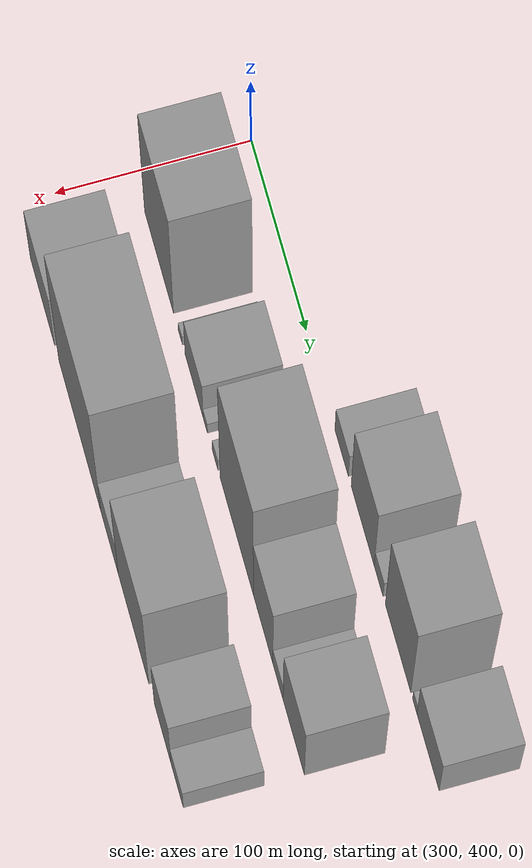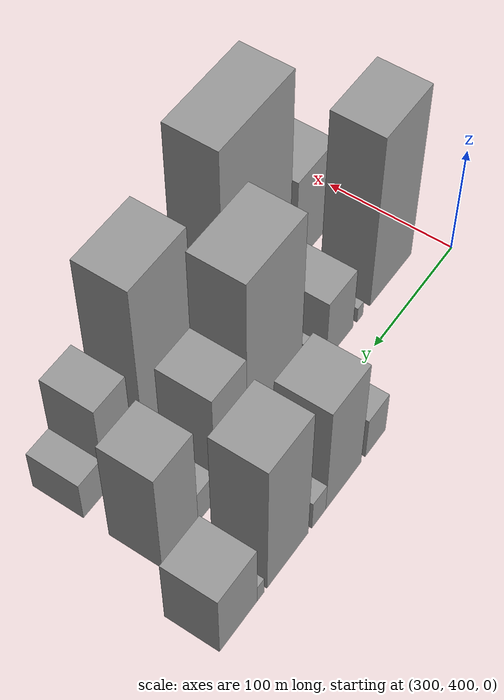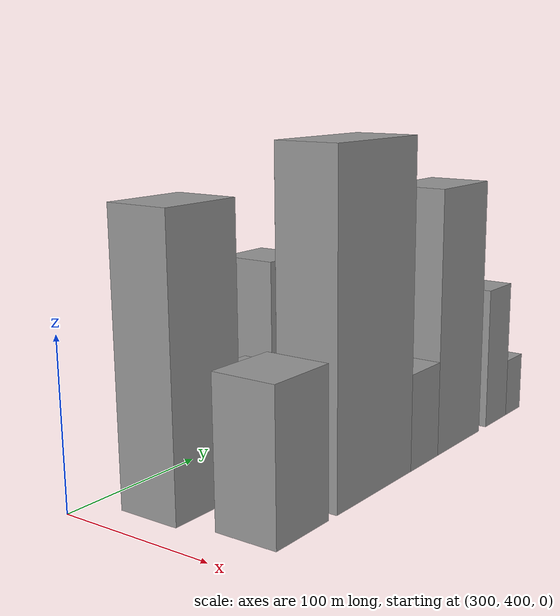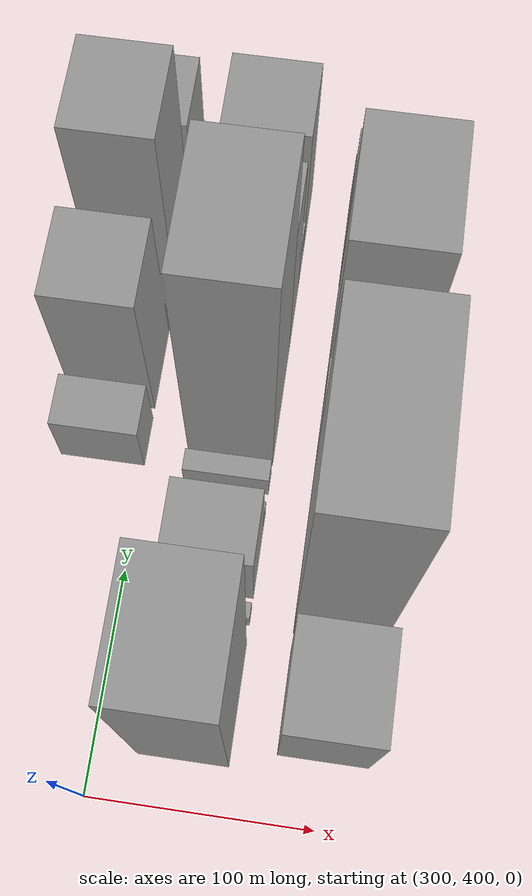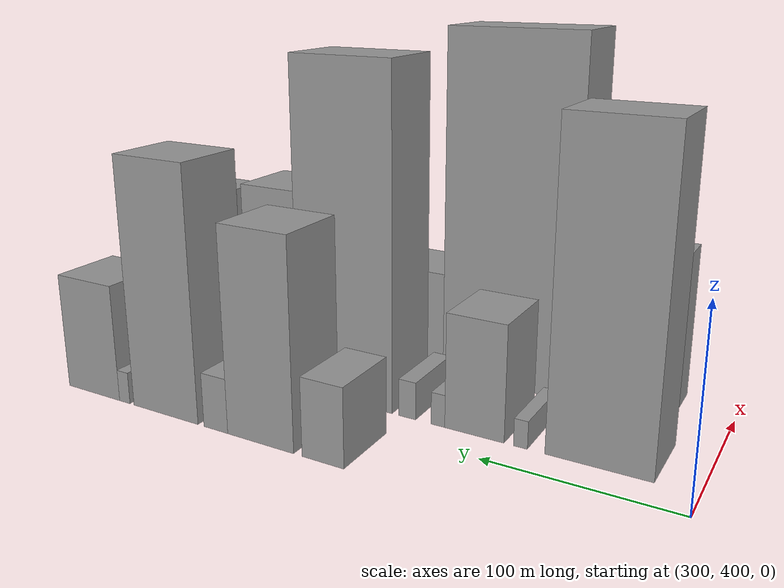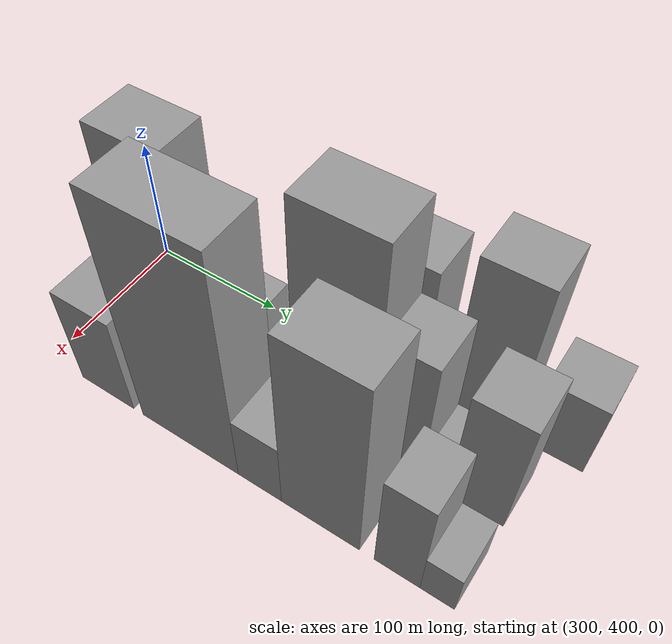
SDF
<sdf version="1.6">
 <world name="default">
  <model name="building_208">
   <static>1</static>
   <pose>280.0000 563.4490 0 0.000000 0.000000 0.000000</pose>
   <link name="link">
    <pose>0 0 21.00 0 0 0</pose>
    <collision name="collision"><geometry><box><size>40.0000 24.0343 42.0000</size></box></geometry></collision>
    <visual name="visual">
     <cast_shadows>0</cast_shadows>
     <geometry><box><size>40.0000 24.0343 42.0000</size></box></geometry>
     <material>
      <script>
       <uri>model://grey_wall/materials/scripts</uri>
       <uri>model://grey_wall/materials/textures</uri>
       <name>vrc/grey_wall</name>
      </script>
     </material>
    </visual>
   </link>
  </model>
  <model name="building_209">
   <static>1</static>
   <pose>280.0000 600.9163 0 0.000000 0.000000 0.000000</pose>
   <link name="link">
    <pose>0 0 55.50 0 0 0</pose>
    <collision name="collision"><geometry><box><size>40.0000 40.9002 111.0000</size></box></geometry></collision>
    <visual name="visual">
     <cast_shadows>0</cast_shadows>
     <geometry><box><size>40.0000 40.9002 111.0000</size></box></geometry>
     <material>
      <script>
       <uri>model://grey_wall/materials/scripts</uri>
       <uri>model://grey_wall/materials/textures</uri>
       <name>vrc/grey_wall</name>
      </script>
     </material>
    </visual>
   </link>
  </model>
  <model name="building_210">
   <static>1</static>
   <pose>280.0000 629.1802 0 0.000000 0.000000 0.000000</pose>
   <link name="link">
    <pose>0 0 15.00 0 0 0</pose>
    <collision name="collision"><geometry><box><size>40.0000 15.6276 30.0000</size></box></geometry></collision>
    <visual name="visual">
     <cast_shadows>0</cast_shadows>
     <geometry><box><size>40.0000 15.6276 30.0000</size></box></geometry>
     <material>
      <script>
       <uri>model://grey_wall/materials/scripts</uri>
       <uri>model://grey_wall/materials/textures</uri>
       <name>vrc/grey_wall</name>
      </script>
     </material>
    </visual>
   </link>
  </model>
  <model name="building_211">
   <static>1</static>
   <pose>280.0000 663.4857 0 0.000000 0.000000 0.000000</pose>
   <link name="link">
    <pose>0 0 69.00 0 0 0</pose>
    <collision name="collision"><geometry><box><size>40.0000 44.9834 138.0000</size></box></geometry></collision>
    <visual name="visual">
     <cast_shadows>0</cast_shadows>
     <geometry><box><size>40.0000 44.9834 138.0000</size></box></geometry>
     <material>
      <script>
       <uri>model://grey_wall/materials/scripts</uri>
       <uri>model://grey_wall/materials/textures</uri>
       <name>vrc/grey_wall</name>
      </script>
     </material>
    </visual>
   </link>
  </model>
  <model name="building_212">
   <static>1</static>
   <pose>280.0000 692.8163 0 0.000000 0.000000 0.000000</pose>
   <link name="link">
    <pose>0 0 9.00 0 0 0</pose>
    <collision name="collision"><geometry><box><size>40.0000 7.6778 18.0000</size></box></geometry></collision>
    <visual name="visual">
     <cast_shadows>0</cast_shadows>
     <geometry><box><size>40.0000 7.6778 18.0000</size></box></geometry>
     <material>
      <script>
       <uri>model://grey_wall/materials/scripts</uri>
       <uri>model://grey_wall/materials/textures</uri>
       <name>vrc/grey_wall</name>
      </script>
     </material>
    </visual>
   </link>
  </model>
  <model name="building_213">
   <static>1</static>
   <pose>280.0000 716.0345 0 0.000000 0.000000 0.000000</pose>
   <link name="link">
    <pose>0 0 33.00 0 0 0</pose>
    <collision name="collision"><geometry><box><size>40.0000 38.7587 66.0000</size></box></geometry></collision>
    <visual name="visual">
     <cast_shadows>0</cast_shadows>
     <geometry><box><size>40.0000 38.7587 66.0000</size></box></geometry>
     <material>
      <script>
       <uri>model://grey_wall/materials/scripts</uri>
       <uri>model://grey_wall/materials/textures</uri>
       <name>vrc/grey_wall</name>
      </script>
     </material>
    </visual>
   </link>
  </model>
  <model name="building_264">
   <static>1</static>
   <pose>340.0000 447.4924 0 0.000000 0.000000 0.000000</pose>
   <link name="link">
    <pose>0 0 84.00 0 0 0</pose>
    <collision name="collision"><geometry><box><size>40.0000 53.2807 168.0000</size></box></geometry></collision>
    <visual name="visual">
     <cast_shadows>0</cast_shadows>
     <geometry><box><size>40.0000 53.2807 168.0000</size></box></geometry>
     <material>
      <script>
       <uri>model://grey_wall/materials/scripts</uri>
       <uri>model://grey_wall/materials/textures</uri>
       <name>vrc/grey_wall</name>
      </script>
     </material>
    </visual>
   </link>
  </model>
  <model name="building_265">
   <static>1</static>
   <pose>340.0000 486.8226 0 0.000000 0.000000 0.000000</pose>
   <link name="link">
    <pose>0 0 7.50 0 0 0</pose>
    <collision name="collision"><geometry><box><size>40.0000 7.3797 15.0000</size></box></geometry></collision>
    <visual name="visual">
     <cast_shadows>0</cast_shadows>
     <geometry><box><size>40.0000 7.3797 15.0000</size></box></geometry>
     <material>
      <script>
       <uri>model://grey_wall/materials/scripts</uri>
       <uri>model://grey_wall/materials/textures</uri>
       <name>vrc/grey_wall</name>
      </script>
     </material>
    </visual>
   </link>
  </model>
  <model name="building_266">
   <static>1</static>
   <pose>340.0000 512.0081 0 0.000000 0.000000 0.000000</pose>
   <link name="link">
    <pose>0 0 31.50 0 0 0</pose>
    <collision name="collision"><geometry><box><size>40.0000 32.9914 63.0000</size></box></geometry></collision>
    <visual name="visual">
     <cast_shadows>0</cast_shadows>
     <geometry><box><size>40.0000 32.9914 63.0000</size></box></geometry>
     <material>
      <script>
       <uri>model://grey_wall/materials/scripts</uri>
       <uri>model://grey_wall/materials/textures</uri>
       <name>vrc/grey_wall</name>
      </script>
     </material>
    </visual>
   </link>
  </model>
  <model name="building_267">
   <static>1</static>
   <pose>340.0000 532.4509 0 0.000000 0.000000 0.000000</pose>
   <link name="link">
    <pose>0 0 9.00 0 0 0</pose>
    <collision name="collision"><geometry><box><size>40.0000 7.8941 18.0000</size></box></geometry></collision>
    <visual name="visual">
     <cast_shadows>0</cast_shadows>
     <geometry><box><size>40.0000 7.8941 18.0000</size></box></geometry>
     <material>
      <script>
       <uri>model://grey_wall/materials/scripts</uri>
       <uri>model://grey_wall/materials/textures</uri>
       <name>vrc/grey_wall</name>
      </script>
     </material>
    </visual>
   </link>
  </model>
  <model name="building_268">
   <static>1</static>
   <pose>340.0000 550.5064 0 0.000000 0.000000 0.000000</pose>
   <link name="link">
    <pose>0 0 10.50 0 0 0</pose>
    <collision name="collision"><geometry><box><size>40.0000 10.2170 21.0000</size></box></geometry></collision>
    <visual name="visual">
     <cast_shadows>0</cast_shadows>
     <geometry><box><size>40.0000 10.2170 21.0000</size></box></geometry>
     <material>
      <script>
       <uri>model://grey_wall/materials/scripts</uri>
       <uri>model://grey_wall/materials/textures</uri>
       <name>vrc/grey_wall</name>
      </script>
     </material>
    </visual>
   </link>
  </model>
  <model name="building_269">
   <static>1</static>
   <pose>340.0000 589.7758 0 0.000000 0.000000 0.000000</pose>
   <link name="link">
    <pose>0 0 93.00 0 0 0</pose>
    <collision name="collision"><geometry><box><size>40.0000 60.3216 186.0000</size></box></geometry></collision>
    <visual name="visual">
     <cast_shadows>0</cast_shadows>
     <geometry><box><size>40.0000 60.3216 186.0000</size></box></geometry>
     <material>
      <script>
       <uri>model://grey_wall/materials/scripts</uri>
       <uri>model://grey_wall/materials/textures</uri>
       <name>vrc/grey_wall</name>
      </script>
     </material>
    </visual>
   </link>
  </model>
  <model name="building_270">
   <static>1</static>
   <pose>340.0000 637.2410 0 0.000000 0.000000 0.000000</pose>
   <link name="link">
    <pose>0 0 57.00 0 0 0</pose>
    <collision name="collision"><geometry><box><size>40.0000 34.6089 114.0000</size></box></geometry></collision>
    <visual name="visual">
     <cast_shadows>0</cast_shadows>
     <geometry><box><size>40.0000 34.6089 114.0000</size></box></geometry>
     <material>
      <script>
       <uri>model://grey_wall/materials/scripts</uri>
       <uri>model://grey_wall/materials/textures</uri>
       <name>vrc/grey_wall</name>
      </script>
     </material>
    </visual>
   </link>
  </model>
  <model name="building_271">
   <static>1</static>
   <pose>340.0000 663.7603 0 0.000000 0.000000 0.000000</pose>
   <link name="link">
    <pose>0 0 16.50 0 0 0</pose>
    <collision name="collision"><geometry><box><size>40.0000 18.4297 33.0000</size></box></geometry></collision>
    <visual name="visual">
     <cast_shadows>0</cast_shadows>
     <geometry><box><size>40.0000 18.4297 33.0000</size></box></geometry>
     <material>
      <script>
       <uri>model://grey_wall/materials/scripts</uri>
       <uri>model://grey_wall/materials/textures</uri>
       <name>vrc/grey_wall</name>
      </script>
     </material>
    </visual>
   </link>
  </model>
  <model name="building_272">
   <static>1</static>
   <pose>340.0000 691.9069 0 0.000000 0.000000 0.000000</pose>
   <link name="link">
    <pose>0 0 52.50 0 0 0</pose>
    <collision name="collision"><geometry><box><size>40.0000 37.8636 105.0000</size></box></geometry></collision>
    <visual name="visual">
     <cast_shadows>0</cast_shadows>
     <geometry><box><size>40.0000 37.8636 105.0000</size></box></geometry>
     <material>
      <script>
       <uri>model://grey_wall/materials/scripts</uri>
       <uri>model://grey_wall/materials/textures</uri>
       <name>vrc/grey_wall</name>
      </script>
     </material>
    </visual>
   </link>
  </model>
  <model name="building_314">
   <static>1</static>
   <pose>400.0000 451.5305 0 0.000000 0.000000 0.000000</pose>
   <link name="link">
    <pose>0 0 43.50 0 0 0</pose>
    <collision name="collision"><geometry><box><size>40.0000 45.3464 87.0000</size></box></geometry></collision>
    <visual name="visual">
     <cast_shadows>0</cast_shadows>
     <geometry><box><size>40.0000 45.3464 87.0000</size></box></geometry>
     <material>
      <script>
       <uri>model://grey_wall/materials/scripts</uri>
       <uri>model://grey_wall/materials/textures</uri>
       <name>vrc/grey_wall</name>
      </script>
     </material>
    </visual>
   </link>
  </model>
  <model name="building_315">
   <static>1</static>
   <pose>400.0000 521.0367 0 0.000000 0.000000 0.000000</pose>
   <link name="link">
    <pose>0 0 99.00 0 0 0</pose>
    <collision name="collision"><geometry><box><size>40.0000 77.6660 198.0000</size></box></geometry></collision>
    <visual name="visual">
     <cast_shadows>0</cast_shadows>
     <geometry><box><size>40.0000 77.6660 198.0000</size></box></geometry>
     <material>
      <script>
       <uri>model://grey_wall/materials/scripts</uri>
       <uri>model://grey_wall/materials/textures</uri>
       <name>vrc/grey_wall</name>
      </script>
     </material>
    </visual>
   </link>
  </model>
  <model name="building_316">
   <static>1</static>
   <pose>400.0000 576.2065 0 0.000000 0.000000 0.000000</pose>
   <link name="link">
    <pose>0 0 30.00 0 0 0</pose>
    <collision name="collision"><geometry><box><size>40.0000 32.6735 60.0000</size></box></geometry></collision>
    <visual name="visual">
     <cast_shadows>0</cast_shadows>
     <geometry><box><size>40.0000 32.6735 60.0000</size></box></geometry>
     <material>
      <script>
       <uri>model://grey_wall/materials/scripts</uri>
       <uri>model://grey_wall/materials/textures</uri>
       <name>vrc/grey_wall</name>
      </script>
     </material>
    </visual>
   </link>
  </model>
  <model name="building_317">
   <static>1</static>
   <pose>400.0000 620.3330 0 0.000000 0.000000 0.000000</pose>
   <link name="link">
    <pose>0 0 82.50 0 0 0</pose>
    <collision name="collision"><geometry><box><size>40.0000 55.5796 165.0000</size></box></geometry></collision>
    <visual name="visual">
     <cast_shadows>0</cast_shadows>
     <geometry><box><size>40.0000 55.5796 165.0000</size></box></geometry>
     <material>
      <script>
       <uri>model://grey_wall/materials/scripts</uri>
       <uri>model://grey_wall/materials/textures</uri>
       <name>vrc/grey_wall</name>
      </script>
     </material>
    </visual>
   </link>
  </model>
  <model name="building_318">
   <static>1</static>
   <pose>400.0000 673.2861 0 0.000000 0.000000 0.000000</pose>
   <link name="link">
    <pose>0 0 46.50 0 0 0</pose>
    <collision name="collision"><geometry><box><size>40.0000 30.3264 93.0000</size></box></geometry></collision>
    <visual name="visual">
     <cast_shadows>0</cast_shadows>
     <geometry><box><size>40.0000 30.3264 93.0000</size></box></geometry>
     <material>
      <script>
       <uri>model://grey_wall/materials/scripts</uri>
       <uri>model://grey_wall/materials/textures</uri>
       <name>vrc/grey_wall</name>
      </script>
     </material>
    </visual>
   </link>
  </model>
  <model name="building_319">
   <static>1</static>
   <pose>400.0000 699.5167 0 0.000000 0.000000 0.000000</pose>
   <link name="link">
    <pose>0 0 19.50 0 0 0</pose>
    <collision name="collision"><geometry><box><size>40.0000 22.1348 39.0000</size></box></geometry></collision>
    <visual name="visual">
     <cast_shadows>0</cast_shadows>
     <geometry><box><size>40.0000 22.1348 39.0000</size></box></geometry>
     <material>
      <script>
       <uri>model://grey_wall/materials/scripts</uri>
       <uri>model://grey_wall/materials/textures</uri>
       <name>vrc/grey_wall</name>
      </script>
     </material>
    </visual>
   </link>
  </model>
 </world>
</sdf>
